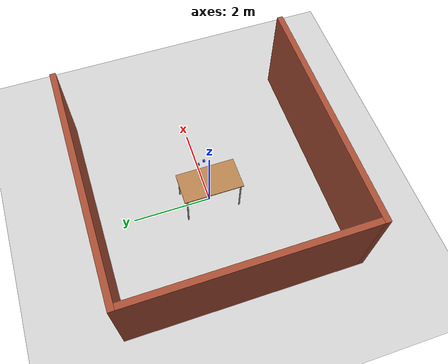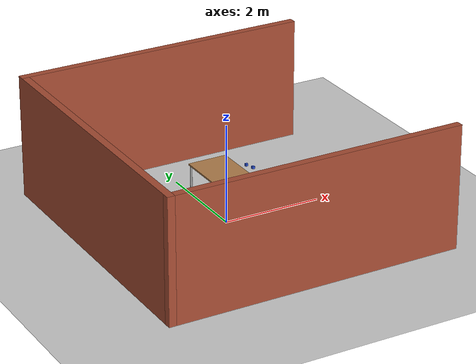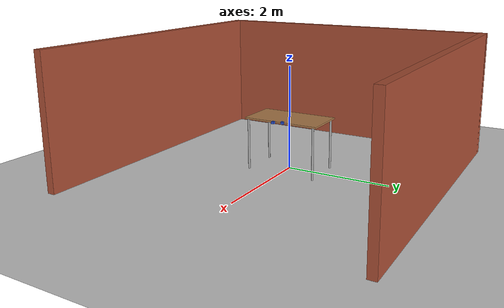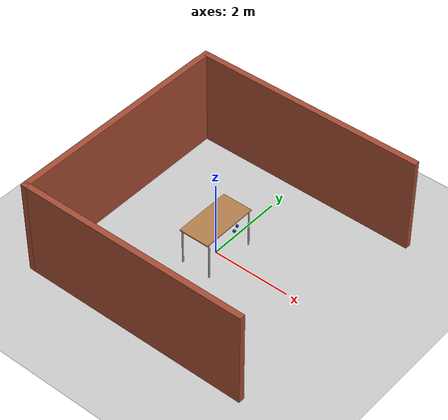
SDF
<sdf version="1.7">
 <world name="default">
  <model name="ground_plane">
   <static>1</static>
   <link name="link">
    <collision name="collision">
     <geometry><plane><normal>0 0 1</normal><size>100 100</size></plane></geometry>
     <surface><friction><ode><mu>100</mu><mu2>50</mu2></ode></friction></surface>
    </collision>
    <visual name="visual">
     <cast_shadows>0</cast_shadows>
     <geometry><plane><normal>0 0 1</normal><size>100 100</size></plane></geometry>
     <material>
      <script><uri>file://media/materials/scripts/gazebo.material</uri><name>Gazebo/Grey</name></script>
     </material>
    </visual>
   </link>
  </model>
  <model name="table">
   <static>1</static>
   <link name="link">
    <collision name="surface">
     <pose>0 0 1 0 -0 0</pose>
     <geometry><box><size>1.5 0.8 0.03</size></box></geometry>
     <surface><friction><ode><mu>0.6</mu><mu2>0.6</mu2></ode></friction></surface>
    </collision>
    <visual name="visual1">
     <pose>0 0 1 0 -0 0</pose>
     <geometry><box><size>1.5 0.8 0.03</size></box></geometry>
     <material>
      <script><uri>file://media/materials/scripts/gazebo.material</uri><name>Gazebo/Wood</name></script>
     </material>
    </visual>
    <collision name="front_left_leg">
     <pose>0.68 0.38 0.5 0 -0 0</pose>
     <geometry><cylinder><radius>0.02</radius><length>1</length></cylinder></geometry>
    </collision>
    <visual name="front_left_leg">
     <pose>0.68 0.38 0.5 0 -0 0</pose>
     <geometry><cylinder><radius>0.02</radius><length>1</length></cylinder></geometry>
     <material>
      <script><uri>file://media/materials/scripts/gazebo.material</uri><name>Gazebo/Grey</name></script>
     </material>
    </visual>
    <collision name="front_right_leg">
     <pose>0.68 -0.38 0.5 0 -0 0</pose>
     <geometry><cylinder><radius>0.02</radius><length>1</length></cylinder></geometry>
    </collision>
    <visual name="front_right_leg">
     <pose>0.68 -0.38 0.5 0 -0 0</pose>
     <geometry><cylinder><radius>0.02</radius><length>1</length></cylinder></geometry>
     <material>
      <script><uri>file://media/materials/scripts/gazebo.material</uri><name>Gazebo/Grey</name></script>
     </material>
    </visual>
    <collision name="back_right_leg">
     <pose>-0.68 -0.38 0.5 0 -0 0</pose>
     <geometry><cylinder><radius>0.02</radius><length>1</length></cylinder></geometry>
    </collision>
    <visual name="back_right_leg">
     <pose>-0.68 -0.38 0.5 0 -0 0</pose>
     <geometry><cylinder><radius>0.02</radius><length>1</length></cylinder></geometry>
     <material>
      <script><uri>file://media/materials/scripts/gazebo.material</uri><name>Gazebo/Grey</name></script>
     </material>
    </visual>
    <collision name="back_left_leg">
     <pose>-0.68 0.38 0.5 0 -0 0</pose>
     <geometry><cylinder><radius>0.02</radius><length>1</length></cylinder></geometry>
    </collision>
    <visual name="back_left_leg">
     <pose>-0.68 0.38 0.5 0 -0 0</pose>
     <geometry><cylinder><radius>0.02</radius><length>1</length></cylinder></geometry>
     <material>
      <script><uri>file://media/materials/scripts/gazebo.material</uri><name>Gazebo/Grey</name></script>
     </material>
    </visual>
   </link>
   <pose>0 0 0 0 -0 1.5708</pose>
  </model>
  <model name="building">
   <pose>0.172106 -0.01584 0 0 -0 0</pose>
   <link name="Wall_14">
    <collision name="Wall_14_Collision">
     <geometry><box><size>6 0.15 2.5</size></box></geometry>
     <pose>0 0 1.25 0 -0 0</pose>
    </collision>
    <visual name="Wall_14_Visual">
     <pose>0 0 1.25 0 -0 0</pose>
     <geometry><box><size>6 0.15 2.5</size></box></geometry>
     <material>
      <script><uri>file://media/materials/scripts/gazebo.material</uri><name>Gazebo/Bricks</name></script>
      <ambient>1 1 1 1</ambient>
     </material>
     <meta><layer>0</layer></meta>
    </visual>
    <pose>0 2.925 0 0 -0 0</pose>
   </link>
   <link name="Wall_16">
    <collision name="Wall_16_Collision">
     <geometry><box><size>6 0.15 2.5</size></box></geometry>
     <pose>0 0 1.25 0 -0 0</pose>
    </collision>
    <visual name="Wall_16_Visual">
     <pose>0 0 1.25 0 -0 0</pose>
     <geometry><box><size>6 0.15 2.5</size></box></geometry>
     <material>
      <script><uri>file://media/materials/scripts/gazebo.material</uri><name>Gazebo/Bricks</name></script>
      <ambient>1 1 1 1</ambient>
     </material>
     <meta><layer>0</layer></meta>
    </visual>
    <pose>0 -2.925 0 0 -0 0</pose>
   </link>
   <link name="Wall_9">
    <collision name="Wall_9_Collision">
     <geometry><box><size>6 0.15 2.5</size></box></geometry>
     <pose>0 0 1.25 0 -0 0</pose>
    </collision>
    <visual name="Wall_9_Visual">
     <pose>0 0 1.25 0 -0 0</pose>
     <geometry><box><size>6 0.15 2.5</size></box></geometry>
     <material>
      <script><uri>file://media/materials/scripts/gazebo.material</uri><name>Gazebo/Bricks</name></script>
      <ambient>1 1 1 1</ambient>
     </material>
     <meta><layer>0</layer></meta>
    </visual>
    <pose>-2.925 0 0 0 -0 1.5708</pose>
   </link>
   <static>1</static>
  </model>
  <model name="blue_box_clone_1">
   <link name="link">
    <inertial>
     <mass>1</mass>
     <inertia>
      <ixx>0.166667</ixx>
      <ixy>0</ixy>
      <ixz>0</ixz>
      <iyy>0.166667</iyy>
      <iyz>0</iyz>
      <izz>0.166667</izz>
     </inertia>
    </inertial>
    <visual name="visual">
     <geometry><box><size>0.05 0.05 0.05</size></box></geometry>
     <material>
      <script><name>Gazebo/Blue</name><uri>file://media/materials/scripts/gazebo.material</uri></script>
      <shader type="pixel"><normal_map>__default__</normal_map></shader>
      <ambient>0 0 1 1</ambient>
      <diffuse>0 0 1 1</diffuse>
      <specular>0.1 0.1 0.1 1</specular>
      <emissive>0 0 0 1</emissive>
     </material>
    </visual>
    <collision name="collision">
     <geometry><box><size>0.05 0.05 0.05</size></box></geometry>
     <surface>
      <friction>
       <ode><mu>1</mu><mu2>1</mu2><fdir1>0 0 0</fdir1><slip1>0</slip1><slip2>0</slip2></ode>
       <torsional>
        <coefficient>1</coefficient>
        <patch_radius>0</patch_radius>
        <surface_radius>0</surface_radius>
        <use_patch_radius>1</use_patch_radius>
        <ode><slip>0</slip></ode>
       </torsional>
      </friction>
      <bounce><restitution_coefficient>0</restitution_coefficient><threshold>1e+06</threshold></bounce>
      <contact>
       <collide_without_contact>0</collide_without_contact>
       <collide_without_contact_bitmask>1</collide_without_contact_bitmask>
       <collide_bitmask>1</collide_bitmask>
       <ode>
        <soft_cfm>0</soft_cfm>
        <soft_erp>0.2</soft_erp>
        <kp>1e+13</kp>
        <kd>1</kd>
        <max_vel>0.01</max_vel>
        <min_depth>0</min_depth>
       </ode>
       <bullet>
        <split_impulse>1</split_impulse>
        <split_impulse_penetration_threshold>-0.01</split_impulse_penetration_threshold>
        <soft_cfm>0</soft_cfm>
        <soft_erp>0.2</soft_erp>
        <kp>1e+13</kp>
        <kd>1</kd>
       </bullet>
      </contact>
     </surface>
    </collision>
   </link>
   <static>0</static>
   <pose>0.504583 0.125203 1.03999 1.4e-05 -2e-06 0.000154</pose>
  </model>
  <model name="blue_box_clone_2">
   <link name="link">
    <inertial>
     <mass>1</mass>
     <inertia>
      <ixx>0.166667</ixx>
      <ixy>0</ixy>
      <ixz>0</ixz>
      <iyy>0.166667</iyy>
      <iyz>0</iyz>
      <izz>0.166667</izz>
     </inertia>
    </inertial>
    <visual name="visual">
     <geometry><box><size>0.05 0.05 0.05</size></box></geometry>
     <material>
      <script><name>Gazebo/Blue</name><uri>file://media/materials/scripts/gazebo.material</uri></script>
      <shader type="pixel"><normal_map>__default__</normal_map></shader>
      <ambient>0 0 1 1</ambient>
      <diffuse>0 0 1 1</diffuse>
      <specular>0.1 0.1 0.1 1</specular>
      <emissive>0 0 0 1</emissive>
     </material>
    </visual>
    <collision name="collision">
     <geometry><box><size>0.05 0.05 0.05</size></box></geometry>
     <surface>
      <friction>
       <ode><mu>1</mu><mu2>1</mu2><fdir1>0 0 0</fdir1><slip1>0</slip1><slip2>0</slip2></ode>
       <torsional>
        <coefficient>1</coefficient>
        <patch_radius>0</patch_radius>
        <surface_radius>0</surface_radius>
        <use_patch_radius>1</use_patch_radius>
        <ode><slip>0</slip></ode>
       </torsional>
      </friction>
      <bounce><restitution_coefficient>0</restitution_coefficient><threshold>1e+06</threshold></bounce>
      <contact>
       <collide_without_contact>0</collide_without_contact>
       <collide_without_contact_bitmask>1</collide_without_contact_bitmask>
       <collide_bitmask>1</collide_bitmask>
       <ode>
        <soft_cfm>0</soft_cfm>
        <soft_erp>0.2</soft_erp>
        <kp>1e+13</kp>
        <kd>1</kd>
        <max_vel>0.01</max_vel>
        <min_depth>0</min_depth>
       </ode>
       <bullet>
        <split_impulse>1</split_impulse>
        <split_impulse_penetration_threshold>-0.01</split_impulse_penetration_threshold>
        <soft_cfm>0</soft_cfm>
        <soft_erp>0.2</soft_erp>
        <kp>1e+13</kp>
        <kd>1</kd>
       </bullet>
      </contact>
     </surface>
    </collision>
   </link>
   <static>0</static>
   <pose>0.556768 -0.038378 1.04 -2e-06 -1.1e-05 0.000161</pose>
  </model>
 </world>
</sdf>
